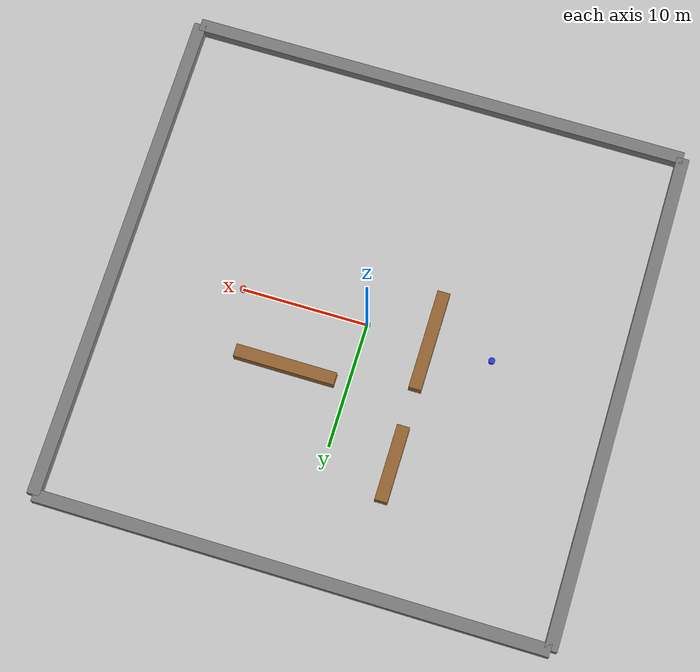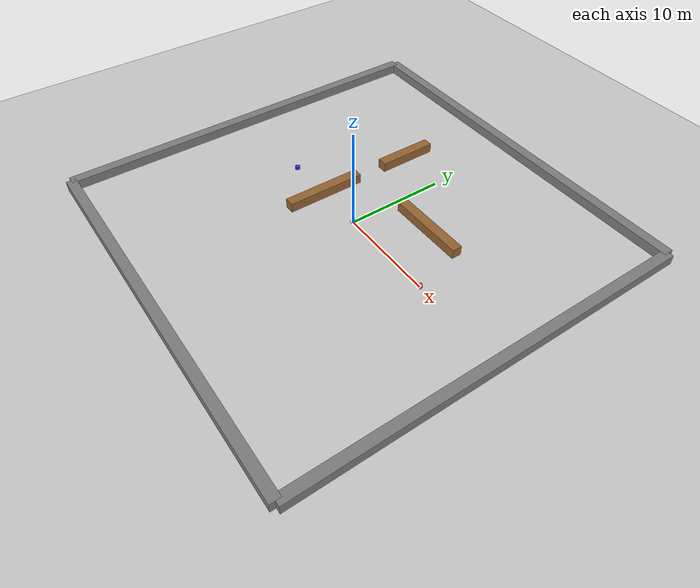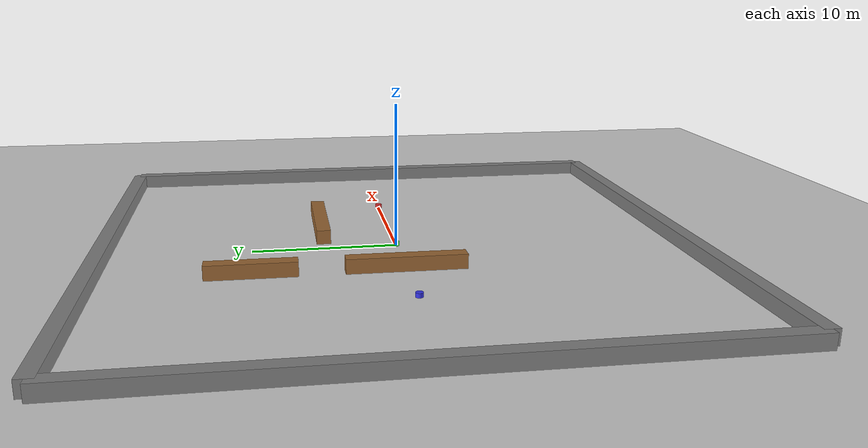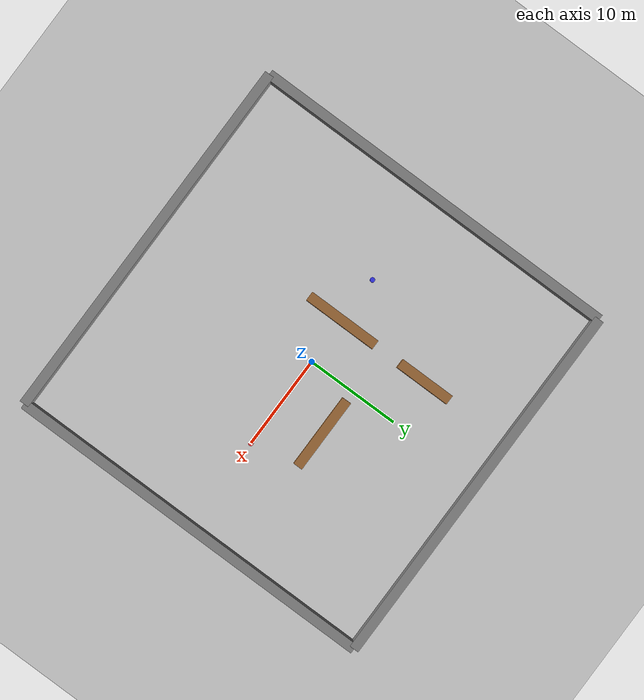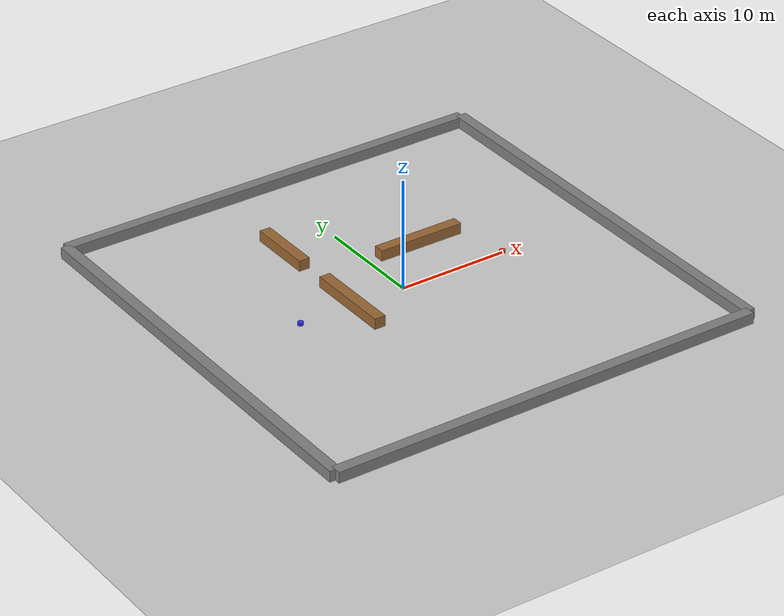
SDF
<?xml version="1.0" ?>
<sdf version="1.7">
  <world name="warehouse">
    <physics type="ode">
      <max_step_size>0.001</max_step_size>
      <real_time_factor>1</real_time_factor>
      <real_time_update_rate>1000</real_time_update_rate>
      <gravity>0 0 -9.81</gravity>
    </physics>

    <scene>
      <ambient>0.5 0.5 0.5</ambient>
      <background>0.7 0.7 0.7</background>
    </scene>

    <light type="directional" name="sun">
      <cast_shadows>true</cast_shadows>
      <pose>10 10 10 0 0 0</pose>
      <diffuse>0.8 0.8 0.8 1</diffuse>
      <specular>0.2 0.2 0.2 1</specular>
      <attenuation>
        <range>1000</range>
        <constant>0.9</constant>
        <linear>0.01</linear>
        <quadratic>0.001</quadratic>
      </attenuation>
      <direction>-0.5 0.5 -1</direction>
    </light>

    <!-- Warehouse floor -->
    <model name="ground">
      <static>true</static>
      <link name="link">
        <collision name="collision">
          <geometry>
            <plane>
              <normal>0 0 1</normal>
              <size>50 50</size>
            </plane>
          </geometry>
        </collision>
        <visual name="visual">
          <geometry>
            <plane>
              <normal>0 0 1</normal>
              <size>50 50</size>
            </plane>
          </geometry>
          <material>
            <ambient>0.8 0.8 0.8 1</ambient>
            <diffuse>0.8 0.8 0.8 1</diffuse>
          </material>
        </visual>
      </link>
    </model>

    <!-- Warehouse walls -->
    <model name="north_wall">
      <static>true</static>
      <pose>0 20 0.5 0 0 0</pose>
      <link name="link">
        <collision name="collision">
          <geometry>
            <box>
              <size>40 1 1</size>
            </box>
          </geometry>
        </collision>
        <visual name="visual">
          <geometry>
            <box>
              <size>40 1 1</size>
            </box>
          </geometry>
          <material>
            <ambient>0.5 0.5 0.5 1</ambient>
            <diffuse>0.5 0.5 0.5 1</diffuse>
          </material>
        </visual>
      </link>
    </model>

    <model name="south_wall">
      <static>true</static>
      <pose>0 -20 0.5 0 0 0</pose>
      <link name="link">
        <collision name="collision">
          <geometry>
            <box>
              <size>40 1 1</size>
            </box>
          </geometry>
        </collision>
        <visual name="visual">
          <geometry>
            <box>
              <size>40 1 1</size>
            </box>
          </geometry>
          <material>
            <ambient>0.5 0.5 0.5 1</ambient>
            <diffuse>0.5 0.5 0.5 1</diffuse>
          </material>
        </visual>
      </link>
    </model>

    <model name="east_wall">
      <static>true</static>
      <pose>20 0 0.5 0 0 0</pose>
      <link name="link">
        <collision name="collision">
          <geometry>
            <box>
              <size>1 40 1</size>
            </box>
          </geometry>
        </collision>
        <visual name="visual">
          <geometry>
            <box>
              <size>1 40 1</size>
            </box>
          </geometry>
          <material>
            <ambient>0.5 0.5 0.5 1</ambient>
            <diffuse>0.5 0.5 0.5 1</diffuse>
          </material>
        </visual>
      </link>
    </model>

    <model name="west_wall">
      <static>true</static>
      <pose>-20 0 0.5 0 0 0</pose>
      <link name="link">
        <collision name="collision">
          <geometry>
            <box>
              <size>1 40 1</size>
            </box>
          </geometry>
        </collision>
        <visual name="visual">
          <geometry>
            <box>
              <size>1 40 1</size>
            </box>
          </geometry>
          <material>
            <ambient>0.5 0.5 0.5 1</ambient>
            <diffuse>0.5 0.5 0.5 1</diffuse>
          </material>
        </visual>
      </link>
    </model>

    <!-- Obstacle shelves -->
    <model name="shelf_1">
      <static>true</static>
      <pose>-5 0 0.5 0 0 0</pose>
      <link name="link">
        <collision name="collision">
          <geometry>
            <box>
              <size>1 8 1</size>
            </box>
          </geometry>
        </collision>
        <visual name="visual">
          <geometry>
            <box>
              <size>1 8 1</size>
            </box>
          </geometry>
          <material>
            <ambient>0.6 0.4 0.2 1</ambient>
            <diffuse>0.6 0.4 0.2 1</diffuse>
          </material>
        </visual>
      </link>
    </model>

    <model name="shelf_2">
      <static>true</static>
      <pose>5 5 0.5 0 0 0</pose>
      <link name="link">
        <collision name="collision">
          <geometry>
            <box>
              <size>8 1 1</size>
            </box>
          </geometry>
        </collision>
        <visual name="visual">
          <geometry>
            <box>
              <size>8 1 1</size>
            </box>
          </geometry>
          <material>
            <ambient>0.6 0.4 0.2 1</ambient>
            <diffuse>0.6 0.4 0.2 1</diffuse>
          </material>
        </visual>
      </link>
    </model>

    <model name="shelf_3">
      <static>true</static>
      <pose>-5 10 0.5 0 0 0</pose>
      <link name="link">
        <collision name="collision">
          <geometry>
            <box>
              <size>1 6 1</size>
            </box>
          </geometry>
        </collision>
        <visual name="visual">
          <geometry>
            <box>
              <size>1 6 1</size>
            </box>
          </geometry>
          <material>
            <ambient>0.6 0.4 0.2 1</ambient>
            <diffuse>0.6 0.4 0.2 1</diffuse>
          </material>
        </visual>
      </link>
    </model>

    <!-- Robot 0 -->
    <model name="amr_0">
      <pose>-10 0 0.15 0 0 0</pose>
      <link name="base_link">
        <inertial>
          <mass>20</mass>
          <inertia>
            <ixx>0.2</ixx>
            <ixy>0</ixy>
            <ixz>0</ixz>
            <iyy>0.2</iyy>
            <iyz>0</iyz>
            <izz>0.4</izz>
          </inertia>
        </inertial>
        <collision name="base_collision">
          <geometry>
            <cylinder>
              <radius>0.25</radius>
              <length>0.3</length>
            </cylinder>
          </geometry>
        </collision>
        <visual name="base_visual">
          <geometry>
            <cylinder>
              <radius>0.25</radius>
              <length>0.3</length>
            </cylinder>
          </geometry>
          <material>
            <ambient>0.2 0.2 0.8 1</ambient>
            <diffuse>0.2 0.2 0.9 1</diffuse>
          </material>
        </visual>
        <!-- LiDAR sensor -->
        <sensor name="lidar" type="ray">
          <pose>0 0 0.1 0 0 0</pose>
          <ray>
            <scan>
              <horizontal>
                <samples>360</samples>
                <resolution>1</resolution>
                <min_angle>-3.14159</min_angle>
                <max_angle>3.14159</max_angle>
              </horizontal>
            </scan>
            <range>
              <min>0.1</min>
              <max>10.0</max>
              <resolution>0.01</resolution>
            </range>
          </ray>
          <always_on>true</always_on>
          <update_rate>10</update_rate>
          <visualize>false</visualize>
        </sensor>
      </link>
      <plugin filename="libignition-gazebo-pose-publisher-system.so" name="gz::sim::systems::PosePublisher">
        <publish_link_pose>true</publish_link_pose>
      </plugin>
      <!-- Odometry plugin publishes /model/amr_0/odometry_with_covariance (gz-sim 8 default) -->
      <plugin filename="libignition-gazebo-odometry-publisher-system.so" name="gz::sim::systems::OdometryPublisher">
        <odom_topic>odometry</odom_topic>
        <odom_frame>odom</odom_frame>
        <robot_base_frame>base_link</robot_base_frame>
      </plugin>
    </model>

    <!-- Robot 1 -->
    <model name="amr_1">
      <pose>0 0 0.15 0 0 0</pose>
      <link name="base_link">
        <inertial>
          <mass>20</mass>
          <inertia>
            <ixx>0.2</ixx>
            <ixy>0</ixy>
            <ixz>0</ixz>
            <iyy>0.2</iyy>
            <iyz>0</iyz>
            <izz>0.4</izz>
          </inertia>
        </inertial>
        <collision name="base_collision">
          <geometry>
            <cylinder>
              <radius>0.25</radius>
              <length>0.3</length>
            </cylinder>
          </geometry>
        </collision>
        <visual name="base_visual">
          <geometry>
            <cylinder>
              <radius>0.25</radius>
              <length>0.3</length>
            </cylinder>
          </geometry>
          <material>
            <ambient>0.2 0.8 0.2 1</ambient>
            <diffuse>0.2 0.9 0.2 1</diffuse>
          </material>
        </visual>
        <!-- LiDAR sensor -->
        <sensor name="lidar" type="ray">
          <pose>0 0 0.1 0 0 0</pose>
          <ray>
            <scan>
              <horizontal>
                <samples>360</samples>
                <resolution>1</resolution>
                <min_angle>-3.14159</min_angle>
                <max_angle>3.14159</max_angle>
              </horizontal>
            </scan>
            <range>
              <min>0.1</min>
              <max>10.0</max>
              <resolution>0.01</resolution>
            </range>
          </ray>
          <always_on>true</always_on>
          <update_rate>10</update_rate>
          <visualize>false</visualize>
        </sensor>
      </link>
      <plugin filename="libignition-gazebo-pose-publisher-system.so" name="gz::sim::systems::PosePublisher">
        <publish_link_pose>true</publish_link_pose>
      </plugin>
      <!-- Odometry plugin publishes /model/amr_1/odometry_with_covariance (gz-sim 8 default) -->
      <plugin filename="libignition-gazebo-odometry-publisher-system.so" name="gz::sim::systems::OdometryPublisher">
        <odom_topic>odometry</odom_topic>
        <odom_frame>odom</odom_frame>
        <robot_base_frame>base_link</robot_base_frame>
      </plugin>
    </model>

    <!-- Robot 2 -->
    <model name="amr_2">
      <pose>10 0 0.15 0 0 0</pose>
      <link name="base_link">
        <inertial>
          <mass>20</mass>
          <inertia>
            <ixx>0.2</ixx>
            <ixy>0</ixy>
            <ixz>0</ixz>
            <iyy>0.2</iyy>
            <iyz>0</iyz>
            <izz>0.4</izz>
          </inertia>
        </inertial>
        <collision name="base_collision">
          <geometry>
            <cylinder>
              <radius>0.25</radius>
              <length>0.3</length>
            </cylinder>
          </geometry>
        </collision>
        <visual name="base_visual">
          <geometry>
            <cylinder>
              <radius>0.25</radius>
              <length>0.3</length>
            </cylinder>
          </geometry>
          <material>
            <ambient>0.8 0.2 0.2 1</ambient>
            <diffuse>0.9 0.2 0.2 1</diffuse>
          </material>
        </visual>
        <!-- LiDAR sensor -->
        <sensor name="lidar" type="ray">
          <pose>0 0 0.1 0 0 0</pose>
          <ray>
            <scan>
              <horizontal>
                <samples>360</samples>
                <resolution>1</resolution>
                <min_angle>-3.14159</min_angle>
                <max_angle>3.14159</max_angle>
              </horizontal>
            </scan>
            <range>
              <min>0.1</min>
              <max>10.0</max>
              <resolution>0.01</resolution>
            </range>
          </ray>
          <always_on>true</always_on>
          <update_rate>10</update_rate>
          <visualize>false</visualize>
        </sensor>
      </link>
      <plugin filename="libignition-gazebo-pose-publisher-system.so" name="gz::sim::systems::PosePublisher">
        <publish_link_pose>true</publish_link_pose>
      </plugin>
      <!-- Odometry plugin publishes /model/amr_2/odometry_with_covariance (gz-sim 8 default) -->
      <plugin filename="libignition-gazebo-odometry-publisher-system.so" name="gz::sim::systems::OdometryPublisher">
        <odom_topic>odometry</odom_topic>
        <odom_frame>odom</odom_frame>
        <robot_base_frame>base_link</robot_base_frame>
      </plugin>
    </model>

  </world>
</sdf>
